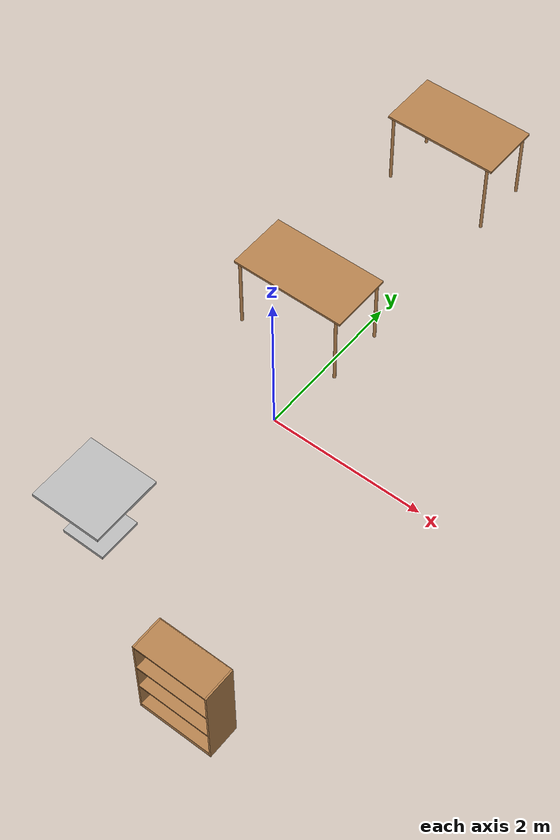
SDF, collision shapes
<?xml version='1.0'?>
<sdf version='1.6'>
  <model name='office_setup'>
    <model name='bookshelf'>
      <static>1</static>
      <link name='link'>
        <inertial>
          <mass>1</mass>
        </inertial>
        <collision name='back'>
          <pose frame=''>0 0.005 0.6 0 -0 0</pose>
          <geometry>
            <box>
              <size>0.9 0.01 1.2</size>
            </box>
          </geometry>
        </collision>
        <visual name='visual1'>
          <pose frame=''>0 0.005 0.6 0 -0 0</pose>
          <geometry>
            <box>
              <size>0.9 0.01 1.2</size>
            </box>
          </geometry>
          <material>
            <script>
              <uri>file://media/materials/scripts/gazebo.material</uri>
              <name>Gazebo/Wood</name>
            </script>
          </material>
        </visual>
        <collision name='left_side'>
          <pose frame=''>0.45 -0.195 0.6 0 -0 0</pose>
          <geometry>
            <box>
              <size>0.02 0.4 1.2</size>
            </box>
          </geometry>
        </collision>
        <visual name='visual2'>
          <pose frame=''>0.45 -0.195 0.6 0 -0 0</pose>
          <geometry>
            <box>
              <size>0.02 0.4 1.2</size>
            </box>
          </geometry>
          <material>
            <script>
              <uri>file://media/materials/scripts/gazebo.material</uri>
              <name>Gazebo/Wood</name>
            </script>
          </material>
        </visual>
        <collision name='right_side'>
          <pose frame=''>-0.45 -0.195 0.6 0 -0 0</pose>
          <geometry>
            <box>
              <size>0.02 0.4 1.2</size>
            </box>
          </geometry>
        </collision>
        <visual name='visual3'>
          <pose frame=''>-0.45 -0.195 0.6 0 -0 0</pose>
          <geometry>
            <box>
              <size>0.02 0.4 1.2</size>
            </box>
          </geometry>
          <material>
            <script>
              <uri>file://media/materials/scripts/gazebo.material</uri>
              <name>Gazebo/Wood</name>
            </script>
          </material>
        </visual>
        <collision name='bottom'>
          <pose frame=''>0 -0.195 0.03 0 -0 0</pose>
          <geometry>
            <box>
              <size>0.88 0.4 0.06</size>
            </box>
          </geometry>
        </collision>
        <visual name='visual4'>
          <pose frame=''>0 -0.195 0.03 0 -0 0</pose>
          <geometry>
            <box>
              <size>0.88 0.4 0.06</size>
            </box>
          </geometry>
          <material>
            <script>
              <uri>file://media/materials/scripts/gazebo.material</uri>
              <name>Gazebo/Wood</name>
            </script>
          </material>
        </visual>
        <collision name='top'>
          <pose frame=''>0 -0.195 1.19 0 -0 0</pose>
          <geometry>
            <box>
              <size>0.88 0.4 0.02</size>
            </box>
          </geometry>
        </collision>
        <visual name='visual5'>
          <pose frame=''>0 -0.195 1.19 0 -0 0</pose>
          <geometry>
            <box>
              <size>0.88 0.4 0.02</size>
            </box>
          </geometry>
          <material>
            <script>
              <uri>file://media/materials/scripts/gazebo.material</uri>
              <name>Gazebo/Wood</name>
            </script>
          </material>
        </visual>
        <collision name='low_shelf'>
          <pose frame=''>0 -0.195 0.43 0 -0 0</pose>
          <geometry>
            <box>
              <size>0.88 0.4 0.02</size>
            </box>
          </geometry>
        </collision>
        <visual name='visual6'>
          <pose frame=''>0 -0.195 0.43 0 -0 0</pose>
          <geometry>
            <box>
              <size>0.88 0.4 0.02</size>
            </box>
          </geometry>
          <material>
            <script>
              <uri>file://media/materials/scripts/gazebo.material</uri>
              <name>Gazebo/Wood</name>
            </script>
          </material>
        </visual>
        <collision name='high_shelf'>
          <pose frame=''>0 -0.195 0.8 0 -0 0</pose>
          <geometry>
            <box>
              <size>0.88 0.4 0.02</size>
            </box>
          </geometry>
        </collision>
        <visual name='visual7'>
          <pose frame=''>0 -0.195 0.8 0 -0 0</pose>
          <geometry>
            <box>
              <size>0.88 0.4 0.02</size>
            </box>
          </geometry>
          <material>
            <script>
              <uri>file://media/materials/scripts/gazebo.material</uri>
              <name>Gazebo/Wood</name>
            </script>
          </material>
        </visual>
      </link>
      <pose frame=''>1.61496 -3.2016 0 0 -0 0</pose>
    </model>
    <model name='cafe_table'>
      <static>1</static>
      <link name='link'>
        <collision name='surface'>
          <pose frame=''>0 0 0.755 0 -0 0</pose>
          <geometry>
            <box>
              <size>0.913 0.913 0.04</size>
            </box>
          </geometry>
        </collision>
        <collision name='column'>
          <pose frame=''>0 0 0.37 0 -0 0</pose>
          <geometry>
            <box>
              <size>0.042 0.042 0.74</size>
            </box>
          </geometry>
        </collision>
        <collision name='base'>
          <pose frame=''>0 0 0.02 0 -0 0</pose>
          <geometry>
            <box>
              <size>0.56 0.56 0.04</size>
            </box>
          </geometry>
        </collision>
        <visual name='visual'>
          <geometry>
            <mesh>
              <uri>model://cafe_table/meshes/cafe_table.dae</uri>
            </mesh>
          </geometry>
        </visual>
      </link>
      <pose frame=''>-0.568121 -2.27528 0 0 -0 0</pose>
    </model>
    <model name='table'>
      <static>1</static>
      <link name='link'>
        <collision name='surface'>
          <pose frame=''>0 0 1 0 -0 0</pose>
          <geometry>
            <box>
              <size>1.5 0.8 0.03</size>
            </box>
          </geometry>
          <surface>
            <friction>
              <ode>
                <mu>0.6</mu>
                <mu2>0.6</mu2>
              </ode>
            </friction>
          </surface>
        </collision>
        <visual name='visual1'>
          <pose frame=''>0 0 1 0 -0 0</pose>
          <geometry>
            <box>
              <size>1.5 0.8 0.03</size>
            </box>
          </geometry>
          <material>
            <script>
              <uri>file://media/materials/scripts/gazebo.material</uri>
              <name>Gazebo/Wood</name>
            </script>
          </material>
        </visual>
        <collision name='front_left_leg'>
          <pose frame=''>0.68 0.38 0.5 0 -0 0</pose>
          <geometry>
            <cylinder>
              <radius>0.02</radius>
              <length>1</length>
            </cylinder>
          </geometry>
        </collision>
        <visual name='front_left_leg'>
          <pose frame=''>0.68 0.38 0.5 0 -0 0</pose>
          <geometry>
            <cylinder>
              <radius>0.02</radius>
              <length>1</length>
            </cylinder>
          </geometry>
          <material>
            <script>
              <uri>file://media/materials/scripts/gazebo.material</uri>
              <name>Gazebo/Grey</name>
            </script>
          </material>
        </visual>
        <collision name='front_right_leg'>
          <pose frame=''>0.68 -0.38 0.5 0 -0 0</pose>
          <geometry>
            <cylinder>
              <radius>0.02</radius>
              <length>1</length>
            </cylinder>
          </geometry>
        </collision>
        <visual name='front_right_leg'>
          <pose frame=''>0.68 -0.38 0.5 0 -0 0</pose>
          <geometry>
            <cylinder>
              <radius>0.02</radius>
              <length>1</length>
            </cylinder>
          </geometry>
          <material>
            <script>
              <uri>file://media/materials/scripts/gazebo.material</uri>
              <name>Gazebo/Grey</name>
            </script>
          </material>
        </visual>
        <collision name='back_right_leg'>
          <pose frame=''>-0.68 -0.38 0.5 0 -0 0</pose>
          <geometry>
            <cylinder>
              <radius>0.02</radius>
              <length>1</length>
            </cylinder>
          </geometry>
        </collision>
        <visual name='back_right_leg'>
          <pose frame=''>-0.68 -0.38 0.5 0 -0 0</pose>
          <geometry>
            <cylinder>
              <radius>0.02</radius>
              <length>1</length>
            </cylinder>
          </geometry>
          <material>
            <script>
              <uri>file://media/materials/scripts/gazebo.material</uri>
              <name>Gazebo/Grey</name>
            </script>
          </material>
        </visual>
        <collision name='back_left_leg'>
          <pose frame=''>-0.68 0.38 0.5 0 -0 0</pose>
          <geometry>
            <cylinder>
              <radius>0.02</radius>
              <length>1</length>
            </cylinder>
          </geometry>
        </collision>
        <visual name='back_left_leg'>
          <pose frame=''>-0.68 0.38 0.5 0 -0 0</pose>
          <geometry>
            <cylinder>
              <radius>0.02</radius>
              <length>1</length>
            </cylinder>
          </geometry>
          <material>
            <script>
              <uri>file://media/materials/scripts/gazebo.material</uri>
              <name>Gazebo/Grey</name>
            </script>
          </material>
        </visual>
      </link>
      <pose frame=''>-0.520931 1.27697 0 0 -0 0</pose>
    </model>
    <model name='table_0'>
      <static>1</static>
      <link name='link'>
        <collision name='surface'>
          <pose frame=''>0 0 1 0 -0 0</pose>
          <geometry>
            <box>
              <size>1.5 0.8 0.03</size>
            </box>
          </geometry>
          <surface>
            <friction>
              <ode>
                <mu>0.6</mu>
                <mu2>0.6</mu2>
              </ode>
            </friction>
          </surface>
        </collision>
        <visual name='visual1'>
          <pose frame=''>0 0 1 0 -0 0</pose>
          <geometry>
            <box>
              <size>1.5 0.8 0.03</size>
            </box>
          </geometry>
          <material>
            <script>
              <uri>file://media/materials/scripts/gazebo.material</uri>
              <name>Gazebo/Wood</name>
            </script>
          </material>
        </visual>
        <collision name='front_left_leg'>
          <pose frame=''>0.68 0.38 0.5 0 -0 0</pose>
          <geometry>
            <cylinder>
              <radius>0.02</radius>
              <length>1</length>
            </cylinder>
          </geometry>
        </collision>
        <visual name='front_left_leg'>
          <pose frame=''>0.68 0.38 0.5 0 -0 0</pose>
          <geometry>
            <cylinder>
              <radius>0.02</radius>
              <length>1</length>
            </cylinder>
          </geometry>
          <material>
            <script>
              <uri>file://media/materials/scripts/gazebo.material</uri>
              <name>Gazebo/Grey</name>
            </script>
          </material>
        </visual>
        <collision name='front_right_leg'>
          <pose frame=''>0.68 -0.38 0.5 0 -0 0</pose>
          <geometry>
            <cylinder>
              <radius>0.02</radius>
              <length>1</length>
            </cylinder>
          </geometry>
        </collision>
        <visual name='front_right_leg'>
          <pose frame=''>0.68 -0.38 0.5 0 -0 0</pose>
          <geometry>
            <cylinder>
              <radius>0.02</radius>
              <length>1</length>
            </cylinder>
          </geometry>
          <material>
            <script>
              <uri>file://media/materials/scripts/gazebo.material</uri>
              <name>Gazebo/Grey</name>
            </script>
          </material>
        </visual>
        <collision name='back_right_leg'>
          <pose frame=''>-0.68 -0.38 0.5 0 -0 0</pose>
          <geometry>
            <cylinder>
              <radius>0.02</radius>
              <length>1</length>
            </cylinder>
          </geometry>
        </collision>
        <visual name='back_right_leg'>
          <pose frame=''>-0.68 -0.38 0.5 0 -0 0</pose>
          <geometry>
            <cylinder>
              <radius>0.02</radius>
              <length>1</length>
            </cylinder>
          </geometry>
          <material>
            <script>
              <uri>file://media/materials/scripts/gazebo.material</uri>
              <name>Gazebo/Grey</name>
            </script>
          </material>
        </visual>
        <collision name='back_left_leg'>
          <pose frame=''>-0.68 0.38 0.5 0 -0 0</pose>
          <geometry>
            <cylinder>
              <radius>0.02</radius>
              <length>1</length>
            </cylinder>
          </geometry>
        </collision>
        <visual name='back_left_leg'>
          <pose frame=''>-0.68 0.38 0.5 0 -0 0</pose>
          <geometry>
            <cylinder>
              <radius>0.02</radius>
              <length>1</length>
            </cylinder>
          </geometry>
          <material>
            <script>
              <uri>file://media/materials/scripts/gazebo.material</uri>
              <name>Gazebo/Grey</name>
            </script>
          </material>
        </visual>
      </link>
      <pose frame=''>-0.525913 4.19995 0 0 -0 0</pose>
    </model>
    <static>0</static>
    <allow_auto_disable>1</allow_auto_disable>
  </model>
</sdf>
